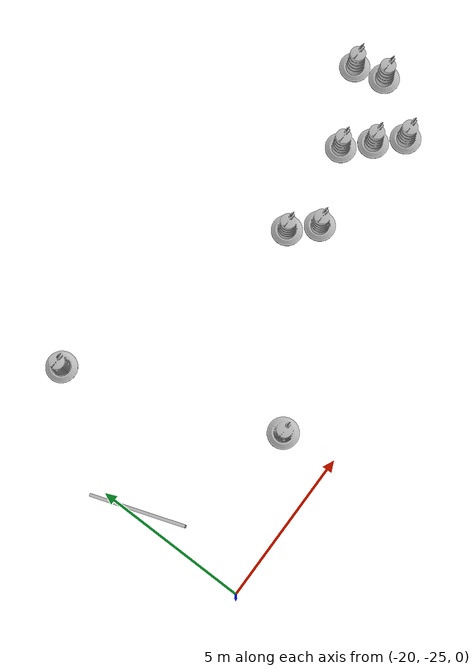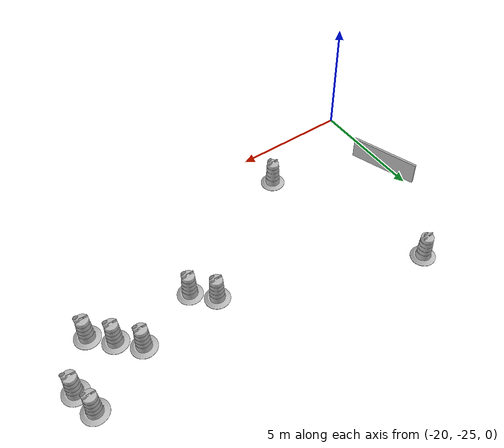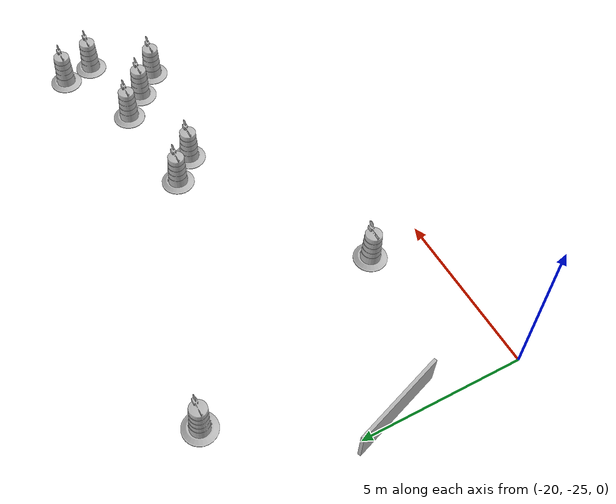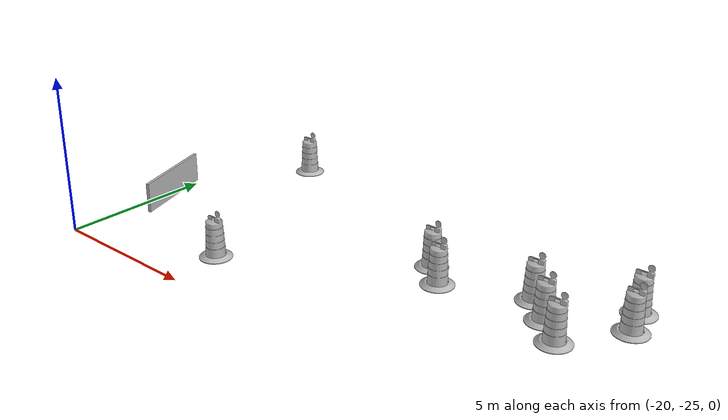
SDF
<sdf version="1.6">
 <world name="default">
  <model name="Construction Barrel_1">
   <link name="link">
    <inertial>
     <pose>0 0 0.4 0 -0 0</pose>
     <mass>500</mass>
     <inertia><ixx>51.2096</ixx><iyy>51.2096</iyy><izz>25</izz><ixy>0</ixy><ixz>0</ixz><iyz>0</iyz></inertia>
    </inertial>
    <collision name="collision">
     <geometry><mesh><uri>model://construction_barrel/meshes/construction_barrel.dae</uri></mesh></geometry>
    </collision>
    <visual name="visual">
     <geometry><mesh><uri>model://construction_barrel/meshes/construction_barrel.dae</uri></mesh></geometry>
    </visual>
    <velocity_decay><linear>0</linear><angular>0</angular></velocity_decay>
   </link>
   <pose>-17.75 -16.5 -4e-06 -5e-06 -7e-06 -0.002983</pose>
   <static>0</static>
  </model>
  <model name="Construction Barrel_2">
   <link name="link">
    <inertial>
     <pose>0 0 0.4 0 -0 0</pose>
     <mass>500</mass>
     <inertia><ixx>51.2096</ixx><iyy>51.2096</iyy><izz>25</izz><ixy>0</ixy><ixz>0</ixz><iyz>0</iyz></inertia>
    </inertial>
    <collision name="collision">
     <geometry><mesh><uri>model://construction_barrel/meshes/construction_barrel.dae</uri></mesh></geometry>
    </collision>
    <visual name="visual">
     <geometry><mesh><uri>model://construction_barrel/meshes/construction_barrel.dae</uri></mesh></geometry>
    </visual>
    <velocity_decay><linear>0</linear><angular>0</angular></velocity_decay>
   </link>
   <pose>-15.25 -23.25 -4e-06 -5e-06 -7e-06 -0.002768</pose>
   <static>0</static>
  </model>
  <model name="Construction Barrel_3">
   <link name="link">
    <inertial>
     <pose>0 0 0.4 0 -0 0</pose>
     <mass>500</mass>
     <inertia><ixx>51.2096</ixx><iyy>51.2096</iyy><izz>25</izz><ixy>0</ixy><ixz>0</ixz><iyz>0</iyz></inertia>
    </inertial>
    <collision name="collision">
     <geometry><mesh><uri>model://construction_barrel/meshes/construction_barrel.dae</uri></mesh></geometry>
    </collision>
    <visual name="visual">
     <geometry><mesh><uri>model://construction_barrel/meshes/construction_barrel.dae</uri></mesh></geometry>
    </visual>
    <velocity_decay><linear>0</linear><angular>0</angular></velocity_decay>
   </link>
   <pose>-10 -19.5 -4e-06 -5e-06 -7e-06 -0.002768</pose>
   <static>0</static>
  </model>
  <model name="Construction Barrel_4">
   <link name="link">
    <inertial>
     <pose>0 0 0.4 0 -0 0</pose>
     <mass>500</mass>
     <inertia><ixx>51.2096</ixx><iyy>51.2096</iyy><izz>25</izz><ixy>0</ixy><ixz>0</ixz><iyz>0</iyz></inertia>
    </inertial>
    <collision name="collision">
     <geometry><mesh><uri>model://construction_barrel/meshes/construction_barrel.dae</uri></mesh></geometry>
    </collision>
    <visual name="visual">
     <geometry><mesh><uri>model://construction_barrel/meshes/construction_barrel.dae</uri></mesh></geometry>
    </visual>
    <velocity_decay><linear>0</linear><angular>0</angular></velocity_decay>
   </link>
   <pose>-9.25 -20.25 0 1e-06 1e-06 -0.0028</pose>
   <static>0</static>
  </model>
  <model name="Construction Barrel_5">
   <link name="link">
    <inertial>
     <pose>0 0 0.4 0 -0 0</pose>
     <mass>500</mass>
     <inertia><ixx>51.2096</ixx><iyy>51.2096</iyy><izz>25</izz><ixy>0</ixy><ixz>0</ixz><iyz>0</iyz></inertia>
    </inertial>
    <collision name="collision">
     <geometry><mesh><uri>model://construction_barrel/meshes/construction_barrel.dae</uri></mesh></geometry>
    </collision>
    <visual name="visual">
     <geometry><mesh><uri>model://construction_barrel/meshes/construction_barrel.dae</uri></mesh></geometry>
    </visual>
    <velocity_decay><linear>0</linear><angular>0</angular></velocity_decay>
   </link>
   <pose>-6 -20 -4e-06 -5e-06 -7e-06 -0.002735</pose>
   <static>0</static>
  </model>
  <model name="Construction Barrel_6">
   <link name="link">
    <inertial>
     <pose>0 0 0.4 0 -0 0</pose>
     <mass>500</mass>
     <inertia><ixx>51.2096</ixx><iyy>51.2096</iyy><izz>25</izz><ixy>0</ixy><ixz>0</ixz><iyz>0</iyz></inertia>
    </inertial>
    <collision name="collision">
     <geometry><mesh><uri>model://construction_barrel/meshes/construction_barrel.dae</uri></mesh></geometry>
    </collision>
    <visual name="visual">
     <geometry><mesh><uri>model://construction_barrel/meshes/construction_barrel.dae</uri></mesh></geometry>
    </visual>
    <velocity_decay><linear>0</linear><angular>0</angular></velocity_decay>
   </link>
   <pose>-5.25 -20.75 -4e-06 -5e-06 -7e-06 -0.002679</pose>
   <static>0</static>
  </model>
  <model name="Construction Barrel_7">
   <link name="link">
    <inertial>
     <pose>0 0 0.4 0 -0 0</pose>
     <mass>500</mass>
     <inertia><ixx>51.2096</ixx><iyy>51.2096</iyy><izz>25</izz><ixy>0</ixy><ixz>0</ixz><iyz>0</iyz></inertia>
    </inertial>
    <collision name="collision">
     <geometry><mesh><uri>model://construction_barrel/meshes/construction_barrel.dae</uri></mesh></geometry>
    </collision>
    <visual name="visual">
     <geometry><mesh><uri>model://construction_barrel/meshes/construction_barrel.dae</uri></mesh></geometry>
    </visual>
    <velocity_decay><linear>0</linear><angular>0</angular></velocity_decay>
   </link>
   <pose>-6.75 -19.25 0 1e-06 1e-06 -0.002542</pose>
   <static>0</static>
  </model>
  <model name="Construction Barrel_8">
   <link name="link">
    <inertial>
     <pose>0 0 0.4 0 -0 0</pose>
     <mass>500</mass>
     <inertia><ixx>51.2096</ixx><iyy>51.2096</iyy><izz>25</izz><ixy>0</ixy><ixz>0</ixz><iyz>0</iyz></inertia>
    </inertial>
    <collision name="collision">
     <geometry><mesh><uri>model://construction_barrel/meshes/construction_barrel.dae</uri></mesh></geometry>
    </collision>
    <visual name="visual">
     <geometry><mesh><uri>model://construction_barrel/meshes/construction_barrel.dae</uri></mesh></geometry>
    </visual>
    <velocity_decay><linear>0</linear><angular>0</angular></velocity_decay>
   </link>
   <pose>-4.25 -18 -2e-06 -5e-06 -4e-06 0.001778</pose>
   <static>0</static>
  </model>
  <model name="Construction Barrel_9">
   <link name="link">
    <inertial>
     <pose>0 0 0.4 0 -0 0</pose>
     <mass>500</mass>
     <inertia><ixx>51.2096</ixx><iyy>51.2096</iyy><izz>25</izz><ixy>0</ixy><ixz>0</ixz><iyz>0</iyz></inertia>
    </inertial>
    <collision name="collision">
     <geometry><mesh><uri>model://construction_barrel/meshes/construction_barrel.dae</uri></mesh></geometry>
    </collision>
    <visual name="visual">
     <geometry><mesh><uri>model://construction_barrel/meshes/construction_barrel.dae</uri></mesh></geometry>
    </visual>
    <velocity_decay><linear>0</linear><angular>0</angular></velocity_decay>
   </link>
   <pose>-4 -19 -3e-06 -5e-06 -4e-06 -0.041479</pose>
   <static>0</static>
  </model>
  <model name="barricade_3">
   <static>1</static>
   <pose>-19.8 -21.17 0.5 0 -0 1.9</pose>
   <link name="link">
    <collision name="collision"><geometry><box><size>3 0.1 1</size></box></geometry></collision>
    <visual name="visual"><geometry><box><size>3 0.1 1</size></box></geometry></visual>
   </link>
  </model>
 </world>
</sdf>
